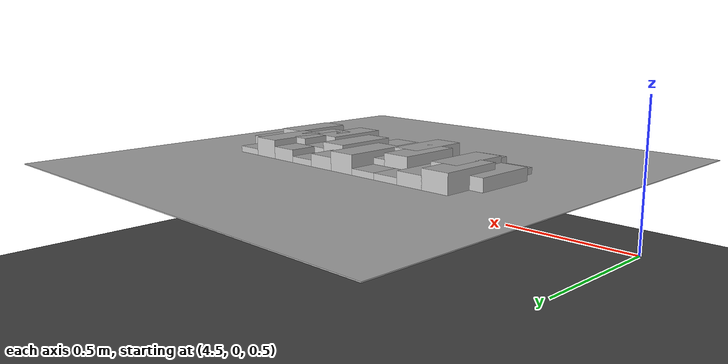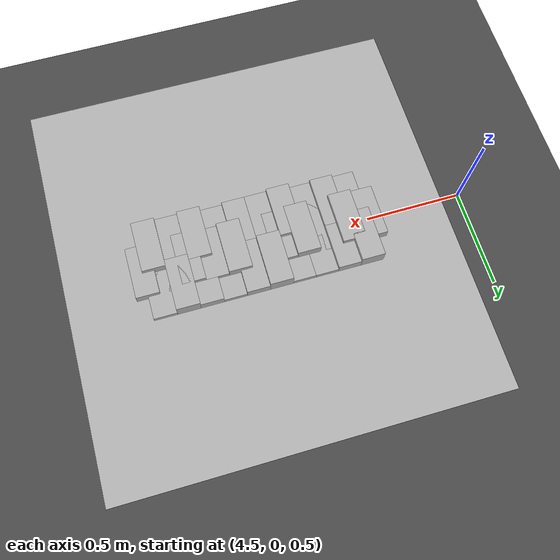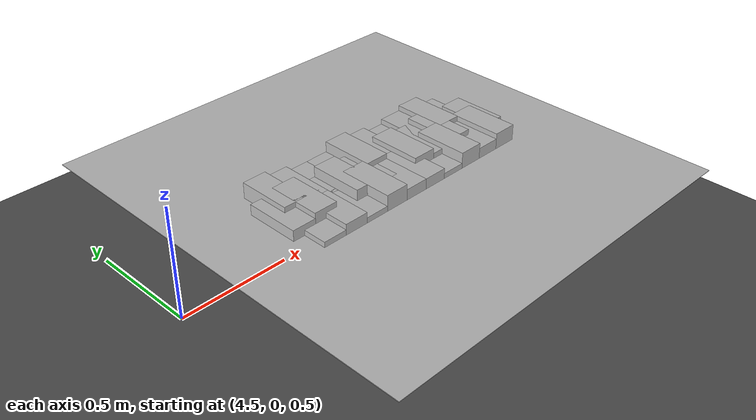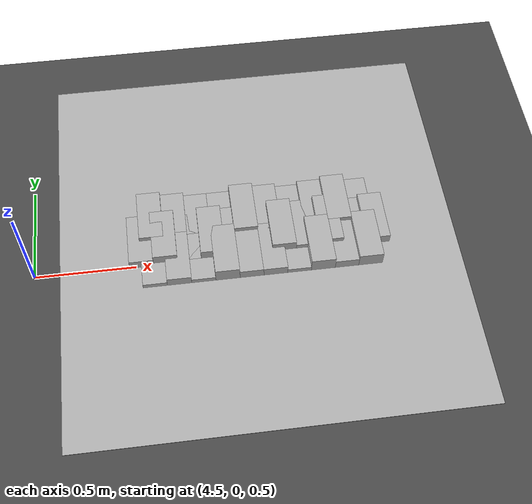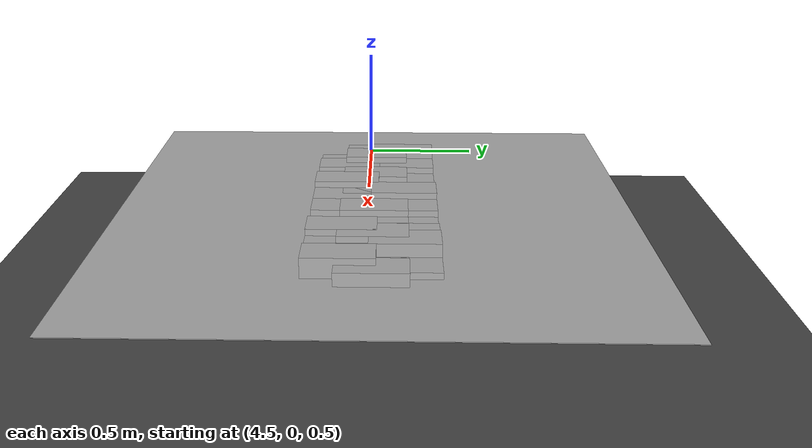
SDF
<sdf version="1.6">
 <world name="default">
  <model name="ground_plane">
   <static>1</static>
   <link name="link">
    <collision name="collision">
     <geometry><plane><normal>0 0 1</normal><size>100 100</size></plane></geometry>
     <surface><friction><ode><mu>100</mu><mu2>50</mu2></ode></friction></surface>
    </collision>
    <visual name="visual">
     <cast_shadows>0</cast_shadows>
     <geometry><plane><normal>0 0 1</normal><size>100 100</size></plane></geometry>
     <material>
      <script><uri>file://media/materials/scripts/gazebo.material</uri><name>Gazebo/Grey</name></script>
     </material>
    </visual>
   </link>
  </model>
  <model name="frc2016_roughterrain_0">
   <link name="link_clone_23">
    <pose>5.7094 0.010101 -0.073164 0 -0 0</pose>
    <inertial>
     <inertia><ixx>nan</ixx><ixy>0</ixy><ixz>0</ixz><iyy>nan</iyy><iyz>0</iyz><izz>nan</izz></inertia>
     <mass>0</mass>
    </inertial>
    <visual name="row1_block5_md">
     <pose>0.05715 0.1143 0.10968 0 -0 0</pose>
     <geometry><box><size>0.115452 0.257474 0.0508</size></box></geometry>
     <material><shader type="pixel"/></material>
    </visual>
    <visual name="row1_block4_sm">
     <pose>0.17145 0.1143 0.09698 0 -0 0</pose>
     <geometry><box><size>0.115452 0.257474 0.0254</size></box></geometry>
     <material><shader type="pixel"/></material>
    </visual>
    <visual name="row1_block3_md">
     <pose>0.28575 0.1143 0.10968 0 -0 0</pose>
     <geometry><box><size>0.115452 0.257474 0.0508</size></box></geometry>
     <material><shader type="pixel"/></material>
    </visual>
    <visual name="platform">
     <pose>0 0 0.08269 0 -0 0</pose>
     <geometry><box><size>1.91826 2.01688 0.003175</size></box></geometry>
     <material><shader type="pixel"/></material>
    </visual>
    <visual name="row1_block1_sm">
     <pose>0.51435 0.1143 0.09698 0 -0 0</pose>
     <geometry><box><size>0.115452 0.257474 0.0254</size></box></geometry>
     <material><shader type="pixel"/></material>
    </visual>
    <visual name="row1_block2_lg">
     <pose>0.40005 0.1143 0.12238 0 -0 0</pose>
     <geometry><box><size>0.115452 0.257474 0.0762</size></box></geometry>
     <material><shader type="pixel"/></material>
    </visual>
    <visual name="row1_block6_lg">
     <pose>-0.05715 0.1143 0.12238 0 -0 0</pose>
     <geometry><box><size>0.115452 0.257474 0.0762</size></box></geometry>
     <material><shader type="pixel"/></material>
    </visual>
    <visual name="row1_block8_sm">
     <pose>-0.28575 0.1143 0.09698 0 -0 0</pose>
     <geometry><box><size>0.115452 0.257474 0.0254</size></box></geometry>
     <material><shader type="pixel"/></material>
    </visual>
    <visual name="row1_block7_sm">
     <pose>-0.17145 0.1143 0.09698 0 -0 0</pose>
     <geometry><box><size>0.115452 0.257474 0.0254</size></box></geometry>
     <material><shader type="pixel"/></material>
    </visual>
    <visual name="row1_block9_md">
     <pose>-0.40005 0.1143 0.10968 0 -0 0</pose>
     <geometry><box><size>0.115452 0.257474 0.0508</size></box></geometry>
     <material><shader type="pixel"/></material>
    </visual>
    <visual name="row1_block10_lg">
     <pose>-0.51435 0.1143 0.12238 0 -0 0</pose>
     <geometry><box><size>0.115452 0.257474 0.0762</size></box></geometry>
     <material><shader type="pixel"/></material>
    </visual>
    <visual name="row2_block1_md">
     <pose>0.5715 0 0.10968 0 -0 0</pose>
     <geometry><box><size>0.115452 0.257474 0.0508</size></box></geometry>
     <material><shader type="pixel"/></material>
    </visual>
    <visual name="row2_block2_sm">
     <pose>0.4572 0 0.09698 0 -0 0</pose>
     <geometry><box><size>0.115452 0.257474 0.0254</size></box></geometry>
     <material><shader type="pixel"/></material>
    </visual>
    <visual name="row2_block3_lg">
     <pose>0.3429 0 0.12238 0 -0 0</pose>
     <geometry><box><size>0.115452 0.257474 0.0762</size></box></geometry>
     <material><shader type="pixel"/></material>
    </visual>
    <visual name="row2_block4_md">
     <pose>0.2286 0 0.10968 0 -0 0</pose>
     <geometry><box><size>0.115452 0.257474 0.0508</size></box></geometry>
     <material><shader type="pixel"/></material>
    </visual>
    <visual name="row2_block5_lg">
     <pose>0.1143 0 0.12238 0 -0 0</pose>
     <geometry><box><size>0.115452 0.257474 0.0762</size></box></geometry>
     <material><shader type="pixel"/></material>
    </visual>
    <visual name="row2_block6_sm">
     <pose>0 0 0.09698 0 -0 0</pose>
     <geometry><box><size>0.115452 0.257474 0.0254</size></box></geometry>
     <material><shader type="pixel"/></material>
    </visual>
    <visual name="row2_block7_md">
     <pose>-0.1143 0 0.10968 0 -0 0</pose>
     <geometry><box><size>0.115452 0.257474 0.0508</size></box></geometry>
     <material><shader type="pixel"/></material>
    </visual>
    <visual name="row2_block8_lg">
     <pose>-0.2286 0 0.12238 0 -0 0</pose>
     <geometry><box><size>0.115452 0.257474 0.0762</size></box></geometry>
     <material><shader type="pixel"/></material>
    </visual>
    <visual name="row2_block9_sm">
     <pose>-0.3429 0 0.09698 0 -0 0</pose>
     <geometry><box><size>0.115452 0.257474 0.0254</size></box></geometry>
     <material><shader type="pixel"/></material>
    </visual>
    <visual name="row2_block10_lg">
     <pose>-0.4572 0 0.12238 0 -0 0</pose>
     <geometry><box><size>0.115452 0.257474 0.0762</size></box></geometry>
     <material><shader type="pixel"/></material>
    </visual>
    <visual name="row2_block11_md">
     <pose>-0.5715 0 0.10968 0 -0 0</pose>
     <geometry><box><size>0.115452 0.257474 0.0508</size></box></geometry>
     <material><shader type="pixel"/></material>
    </visual>
    <visual name="row3_block2_md">
     <pose>0.40005 -0.1143 0.10968 0 -0 0</pose>
     <geometry><box><size>0.115452 0.257474 0.0508</size></box></geometry>
     <material><shader type="pixel"/></material>
    </visual>
    <visual name="row3_block1_lg">
     <pose>0.51435 -0.1143 0.12238 0 -0 0</pose>
     <geometry><box><size>0.115452 0.257474 0.0762</size></box></geometry>
     <material><shader type="pixel"/></material>
    </visual>
    <visual name="row3_block3_lg">
     <pose>0.28575 -0.1143 0.12238 0 -0 0</pose>
     <geometry><box><size>0.115452 0.257474 0.0762</size></box></geometry>
     <material><shader type="pixel"/></material>
    </visual>
    <visual name="row3_block4_sm">
     <pose>0.17145 -0.1143 0.09698 0 -0 0</pose>
     <geometry><box><size>0.115452 0.257474 0.0254</size></box></geometry>
     <material><shader type="pixel"/></material>
    </visual>
    <visual name="row3_block5_md">
     <pose>0.05715 -0.1143 0.10968 0 -0 0</pose>
     <geometry><box><size>0.115452 0.257474 0.0508</size></box></geometry>
     <material><shader type="pixel"/></material>
    </visual>
    <visual name="row3_block6_md">
     <pose>-0.05715 -0.1143 0.10968 0 -0 0</pose>
     <geometry><box><size>0.115452 0.257474 0.0508</size></box></geometry>
     <material><shader type="pixel"/></material>
    </visual>
    <visual name="row3_block8_sm">
     <pose>-0.28575 -0.1143 0.09698 0 -0 0</pose>
     <geometry><box><size>0.115452 0.257474 0.0254</size></box></geometry>
     <material><shader type="pixel"/></material>
    </visual>
    <visual name="row3_block7_lg">
     <pose>-0.17145 -0.1143 0.12238 0 -0 0</pose>
     <geometry><box><size>0.115452 0.257474 0.0762</size></box></geometry>
     <material><shader type="pixel"/></material>
    </visual>
    <visual name="row3_block9_md">
     <pose>-0.40005 -0.1143 0.10968 0 -0 0</pose>
     <geometry><box><size>0.115452 0.257474 0.0508</size></box></geometry>
     <material><shader type="pixel"/></material>
    </visual>
    <visual name="row3_block10_sm">
     <pose>-0.51435 -0.1143 0.09698 0 -0 0</pose>
     <geometry><box><size>0.115452 0.257474 0.0254</size></box></geometry>
     <material><shader type="pixel"/></material>
    </visual>
    <collision name="row2_block5_lg_0">
     <pose>0.1143 0 0.12238 0 -0 0</pose>
     <geometry><box><size>0.115452 0.257474 0.0762</size></box></geometry>
     <surface>
      <friction>
       <ode><mu>1</mu><mu2>1</mu2><fdir1>0 0 0</fdir1><slip1>0</slip1><slip2>0</slip2></ode>
       <torsional>
        <coefficient>1</coefficient>
        <patch_radius>0</patch_radius>
        <surface_radius>0</surface_radius>
        <use_patch_radius>1</use_patch_radius>
        <ode><slip>0</slip></ode>
       </torsional>
      </friction>
      <bounce><restitution_coefficient>0</restitution_coefficient><threshold>1e+06</threshold></bounce>
      <contact>
       <collide_without_contact>0</collide_without_contact>
       <collide_without_contact_bitmask>1</collide_without_contact_bitmask>
       <collide_bitmask>1</collide_bitmask>
       <ode>
        <soft_cfm>0</soft_cfm>
        <soft_erp>0.2</soft_erp>
        <kp>1e+13</kp>
        <kd>1</kd>
        <max_vel>0.01</max_vel>
        <min_depth>0</min_depth>
       </ode>
       <bullet>
        <split_impulse>1</split_impulse>
        <split_impulse_penetration_threshold>-0.01</split_impulse_penetration_threshold>
        <soft_cfm>0</soft_cfm>
        <soft_erp>0.2</soft_erp>
        <kp>1e+13</kp>
        <kd>1</kd>
       </bullet>
      </contact>
     </surface>
    </collision>
    <collision name="platform_0">
     <pose>0 0 0.08269 0 -0 0</pose>
     <geometry><box><size>1.91826 2.01688 0.003175</size></box></geometry>
     <surface>
      <friction>
       <ode><mu>1</mu><mu2>1</mu2><fdir1>0 0 0</fdir1><slip1>0</slip1><slip2>0</slip2></ode>
       <torsional>
        <coefficient>1</coefficient>
        <patch_radius>0</patch_radius>
        <surface_radius>0</surface_radius>
        <use_patch_radius>1</use_patch_radius>
        <ode><slip>0</slip></ode>
       </torsional>
      </friction>
      <bounce><restitution_coefficient>0</restitution_coefficient><threshold>1e+06</threshold></bounce>
      <contact>
       <collide_without_contact>0</collide_without_contact>
       <collide_without_contact_bitmask>1</collide_without_contact_bitmask>
       <collide_bitmask>1</collide_bitmask>
       <ode>
        <soft_cfm>0</soft_cfm>
        <soft_erp>0.2</soft_erp>
        <kp>1e+13</kp>
        <kd>1</kd>
        <max_vel>0.01</max_vel>
        <min_depth>0</min_depth>
       </ode>
       <bullet>
        <split_impulse>1</split_impulse>
        <split_impulse_penetration_threshold>-0.01</split_impulse_penetration_threshold>
        <soft_cfm>0</soft_cfm>
        <soft_erp>0.2</soft_erp>
        <kp>1e+13</kp>
        <kd>1</kd>
       </bullet>
      </contact>
     </surface>
    </collision>
    <collision name="row1_block1_sm_0">
     <pose>0.51435 0.1143 0.09698 0 -0 0</pose>
     <geometry><box><size>0.115452 0.257474 0.0254</size></box></geometry>
     <surface>
      <friction>
       <ode><mu>1</mu><mu2>1</mu2><fdir1>0 0 0</fdir1><slip1>0</slip1><slip2>0</slip2></ode>
       <torsional>
        <coefficient>1</coefficient>
        <patch_radius>0</patch_radius>
        <surface_radius>0</surface_radius>
        <use_patch_radius>1</use_patch_radius>
        <ode><slip>0</slip></ode>
       </torsional>
      </friction>
      <bounce><restitution_coefficient>0</restitution_coefficient><threshold>1e+06</threshold></bounce>
      <contact>
       <collide_without_contact>0</collide_without_contact>
       <collide_without_contact_bitmask>1</collide_without_contact_bitmask>
       <collide_bitmask>1</collide_bitmask>
       <ode>
        <soft_cfm>0</soft_cfm>
        <soft_erp>0.2</soft_erp>
        <kp>1e+13</kp>
        <kd>1</kd>
        <max_vel>0.01</max_vel>
        <min_depth>0</min_depth>
       </ode>
       <bullet>
        <split_impulse>1</split_impulse>
        <split_impulse_penetration_threshold>-0.01</split_impulse_penetration_threshold>
        <soft_cfm>0</soft_cfm>
        <soft_erp>0.2</soft_erp>
        <kp>1e+13</kp>
        <kd>1</kd>
       </bullet>
      </contact>
     </surface>
    </collision>
    <collision name="row1_block2_lg_0">
     <pose>0.40005 0.1143 0.12238 0 -0 0</pose>
     <geometry><box><size>0.115452 0.257474 0.0762</size></box></geometry>
     <surface>
      <friction>
       <ode><mu>1</mu><mu2>1</mu2><fdir1>0 0 0</fdir1><slip1>0</slip1><slip2>0</slip2></ode>
       <torsional>
        <coefficient>1</coefficient>
        <patch_radius>0</patch_radius>
        <surface_radius>0</surface_radius>
        <use_patch_radius>1</use_patch_radius>
        <ode><slip>0</slip></ode>
       </torsional>
      </friction>
      <bounce><restitution_coefficient>0</restitution_coefficient><threshold>1e+06</threshold></bounce>
      <contact>
       <collide_without_contact>0</collide_without_contact>
       <collide_without_contact_bitmask>1</collide_without_contact_bitmask>
       <collide_bitmask>1</collide_bitmask>
       <ode>
        <soft_cfm>0</soft_cfm>
        <soft_erp>0.2</soft_erp>
        <kp>1e+13</kp>
        <kd>1</kd>
        <max_vel>0.01</max_vel>
        <min_depth>0</min_depth>
       </ode>
       <bullet>
        <split_impulse>1</split_impulse>
        <split_impulse_penetration_threshold>-0.01</split_impulse_penetration_threshold>
        <soft_cfm>0</soft_cfm>
        <soft_erp>0.2</soft_erp>
        <kp>1e+13</kp>
        <kd>1</kd>
       </bullet>
      </contact>
     </surface>
    </collision>
    <collision name="row1_block3_md_0">
     <pose>0.28575 0.1143 0.10968 0 -0 0</pose>
     <geometry><box><size>0.115452 0.257474 0.0508</size></box></geometry>
     <surface>
      <friction>
       <ode><mu>1</mu><mu2>1</mu2><fdir1>0 0 0</fdir1><slip1>0</slip1><slip2>0</slip2></ode>
       <torsional>
        <coefficient>1</coefficient>
        <patch_radius>0</patch_radius>
        <surface_radius>0</surface_radius>
        <use_patch_radius>1</use_patch_radius>
        <ode><slip>0</slip></ode>
       </torsional>
      </friction>
      <bounce><restitution_coefficient>0</restitution_coefficient><threshold>1e+06</threshold></bounce>
      <contact>
       <collide_without_contact>0</collide_without_contact>
       <collide_without_contact_bitmask>1</collide_without_contact_bitmask>
       <collide_bitmask>1</collide_bitmask>
       <ode>
        <soft_cfm>0</soft_cfm>
        <soft_erp>0.2</soft_erp>
        <kp>1e+13</kp>
        <kd>1</kd>
        <max_vel>0.01</max_vel>
        <min_depth>0</min_depth>
       </ode>
       <bullet>
        <split_impulse>1</split_impulse>
        <split_impulse_penetration_threshold>-0.01</split_impulse_penetration_threshold>
        <soft_cfm>0</soft_cfm>
        <soft_erp>0.2</soft_erp>
        <kp>1e+13</kp>
        <kd>1</kd>
       </bullet>
      </contact>
     </surface>
    </collision>
    <collision name="row1_block5_md_0">
     <pose>0.05715 0.1143 0.10968 0 -0 0</pose>
     <geometry><box><size>0.115452 0.257474 0.0508</size></box></geometry>
     <surface>
      <friction>
       <ode><mu>1</mu><mu2>1</mu2><fdir1>0 0 0</fdir1><slip1>0</slip1><slip2>0</slip2></ode>
       <torsional>
        <coefficient>1</coefficient>
        <patch_radius>0</patch_radius>
        <surface_radius>0</surface_radius>
        <use_patch_radius>1</use_patch_radius>
        <ode><slip>0</slip></ode>
       </torsional>
      </friction>
      <bounce><restitution_coefficient>0</restitution_coefficient><threshold>1e+06</threshold></bounce>
      <contact>
       <collide_without_contact>0</collide_without_contact>
       <collide_without_contact_bitmask>1</collide_without_contact_bitmask>
       <collide_bitmask>1</collide_bitmask>
       <ode>
        <soft_cfm>0</soft_cfm>
        <soft_erp>0.2</soft_erp>
        <kp>1e+13</kp>
        <kd>1</kd>
        <max_vel>0.01</max_vel>
        <min_depth>0</min_depth>
       </ode>
       <bullet>
        <split_impulse>1</split_impulse>
        <split_impulse_penetration_threshold>-0.01</split_impulse_penetration_threshold>
        <soft_cfm>0</soft_cfm>
        <soft_erp>0.2</soft_erp>
        <kp>1e+13</kp>
        <kd>1</kd>
       </bullet>
      </contact>
     </surface>
    </collision>
    <collision name="row1_block4_sm_0">
     <pose>0.17145 0.1143 0.09698 0 -0 0</pose>
     <geometry><box><size>0.115452 0.257474 0.0254</size></box></geometry>
     <surface>
      <friction>
       <ode><mu>1</mu><mu2>1</mu2><fdir1>0 0 0</fdir1><slip1>0</slip1><slip2>0</slip2></ode>
       <torsional>
        <coefficient>1</coefficient>
        <patch_radius>0</patch_radius>
        <surface_radius>0</surface_radius>
        <use_patch_radius>1</use_patch_radius>
        <ode><slip>0</slip></ode>
       </torsional>
      </friction>
      <bounce><restitution_coefficient>0</restitution_coefficient><threshold>1e+06</threshold></bounce>
      <contact>
       <collide_without_contact>0</collide_without_contact>
       <collide_without_contact_bitmask>1</collide_without_contact_bitmask>
       <collide_bitmask>1</collide_bitmask>
       <ode>
        <soft_cfm>0</soft_cfm>
        <soft_erp>0.2</soft_erp>
        <kp>1e+13</kp>
        <kd>1</kd>
        <max_vel>0.01</max_vel>
        <min_depth>0</min_depth>
       </ode>
       <bullet>
        <split_impulse>1</split_impulse>
        <split_impulse_penetration_threshold>-0.01</split_impulse_penetration_threshold>
        <soft_cfm>0</soft_cfm>
        <soft_erp>0.2</soft_erp>
        <kp>1e+13</kp>
        <kd>1</kd>
       </bullet>
      </contact>
     </surface>
    </collision>
    <collision name="row1_block7_sm_0">
     <pose>-0.17145 0.1143 0.09698 0 -0 0</pose>
     <geometry><box><size>0.115452 0.257474 0.0254</size></box></geometry>
     <surface>
      <friction>
       <ode><mu>1</mu><mu2>1</mu2><fdir1>0 0 0</fdir1><slip1>0</slip1><slip2>0</slip2></ode>
       <torsional>
        <coefficient>1</coefficient>
        <patch_radius>0</patch_radius>
        <surface_radius>0</surface_radius>
        <use_patch_radius>1</use_patch_radius>
        <ode><slip>0</slip></ode>
       </torsional>
      </friction>
      <bounce><restitution_coefficient>0</restitution_coefficient><threshold>1e+06</threshold></bounce>
      <contact>
       <collide_without_contact>0</collide_without_contact>
       <collide_without_contact_bitmask>1</collide_without_contact_bitmask>
       <collide_bitmask>1</collide_bitmask>
       <ode>
        <soft_cfm>0</soft_cfm>
        <soft_erp>0.2</soft_erp>
        <kp>1e+13</kp>
        <kd>1</kd>
        <max_vel>0.01</max_vel>
        <min_depth>0</min_depth>
       </ode>
       <bullet>
        <split_impulse>1</split_impulse>
        <split_impulse_penetration_threshold>-0.01</split_impulse_penetration_threshold>
        <soft_cfm>0</soft_cfm>
        <soft_erp>0.2</soft_erp>
        <kp>1e+13</kp>
        <kd>1</kd>
       </bullet>
      </contact>
     </surface>
    </collision>
    <collision name="row1_block6_lg_0">
     <pose>-0.05715 0.1143 0.12238 0 -0 0</pose>
     <geometry><box><size>0.115452 0.257474 0.0762</size></box></geometry>
     <surface>
      <friction>
       <ode><mu>1</mu><mu2>1</mu2><fdir1>0 0 0</fdir1><slip1>0</slip1><slip2>0</slip2></ode>
       <torsional>
        <coefficient>1</coefficient>
        <patch_radius>0</patch_radius>
        <surface_radius>0</surface_radius>
        <use_patch_radius>1</use_patch_radius>
        <ode><slip>0</slip></ode>
       </torsional>
      </friction>
      <bounce><restitution_coefficient>0</restitution_coefficient><threshold>1e+06</threshold></bounce>
      <contact>
       <collide_without_contact>0</collide_without_contact>
       <collide_without_contact_bitmask>1</collide_without_contact_bitmask>
       <collide_bitmask>1</collide_bitmask>
       <ode>
        <soft_cfm>0</soft_cfm>
        <soft_erp>0.2</soft_erp>
        <kp>1e+13</kp>
        <kd>1</kd>
        <max_vel>0.01</max_vel>
        <min_depth>0</min_depth>
       </ode>
       <bullet>
        <split_impulse>1</split_impulse>
        <split_impulse_penetration_threshold>-0.01</split_impulse_penetration_threshold>
        <soft_cfm>0</soft_cfm>
        <soft_erp>0.2</soft_erp>
        <kp>1e+13</kp>
        <kd>1</kd>
       </bullet>
      </contact>
     </surface>
    </collision>
    <collision name="row1_block8_sm_0">
     <pose>-0.28575 0.1143 0.09698 0 -0 0</pose>
     <geometry><box><size>0.115452 0.257474 0.0254</size></box></geometry>
     <surface>
      <friction>
       <ode><mu>1</mu><mu2>1</mu2><fdir1>0 0 0</fdir1><slip1>0</slip1><slip2>0</slip2></ode>
       <torsional>
        <coefficient>1</coefficient>
        <patch_radius>0</patch_radius>
        <surface_radius>0</surface_radius>
        <use_patch_radius>1</use_patch_radius>
        <ode><slip>0</slip></ode>
       </torsional>
      </friction>
      <bounce><restitution_coefficient>0</restitution_coefficient><threshold>1e+06</threshold></bounce>
      <contact>
       <collide_without_contact>0</collide_without_contact>
       <collide_without_contact_bitmask>1</collide_without_contact_bitmask>
       <collide_bitmask>1</collide_bitmask>
       <ode>
        <soft_cfm>0</soft_cfm>
        <soft_erp>0.2</soft_erp>
        <kp>1e+13</kp>
        <kd>1</kd>
        <max_vel>0.01</max_vel>
        <min_depth>0</min_depth>
       </ode>
       <bullet>
        <split_impulse>1</split_impulse>
        <split_impulse_penetration_threshold>-0.01</split_impulse_penetration_threshold>
        <soft_cfm>0</soft_cfm>
        <soft_erp>0.2</soft_erp>
        <kp>1e+13</kp>
        <kd>1</kd>
       </bullet>
      </contact>
     </surface>
    </collision>
    <collision name="row1_block10_lg_0">
     <pose>-0.51435 0.1143 0.12238 0 -0 0</pose>
     <geometry><box><size>0.115452 0.257474 0.0762</size></box></geometry>
     <surface>
      <friction>
       <ode><mu>1</mu><mu2>1</mu2><fdir1>0 0 0</fdir1><slip1>0</slip1><slip2>0</slip2></ode>
       <torsional>
        <coefficient>1</coefficient>
        <patch_radius>0</patch_radius>
        <surface_radius>0</surface_radius>
        <use_patch_radius>1</use_patch_radius>
        <ode><slip>0</slip></ode>
       </torsional>
      </friction>
      <bounce><restitution_coefficient>0</restitution_coefficient><threshold>1e+06</threshold></bounce>
      <contact>
       <collide_without_contact>0</collide_without_contact>
       <collide_without_contact_bitmask>1</collide_without_contact_bitmask>
       <collide_bitmask>1</collide_bitmask>
       <ode>
        <soft_cfm>0</soft_cfm>
        <soft_erp>0.2</soft_erp>
        <kp>1e+13</kp>
        <kd>1</kd>
        <max_vel>0.01</max_vel>
        <min_depth>0</min_depth>
       </ode>
       <bullet>
        <split_impulse>1</split_impulse>
        <split_impulse_penetration_threshold>-0.01</split_impulse_penetration_threshold>
        <soft_cfm>0</soft_cfm>
        <soft_erp>0.2</soft_erp>
        <kp>1e+13</kp>
        <kd>1</kd>
       </bullet>
      </contact>
     </surface>
    </collision>
    <collision name="row2_block1_md_0">
     <pose>0.5715 0 0.10968 0 -0 0</pose>
     <geometry><box><size>0.115452 0.257474 0.0508</size></box></geometry>
     <surface>
      <friction>
       <ode><mu>1</mu><mu2>1</mu2><fdir1>0 0 0</fdir1><slip1>0</slip1><slip2>0</slip2></ode>
       <torsional>
        <coefficient>1</coefficient>
        <patch_radius>0</patch_radius>
        <surface_radius>0</surface_radius>
        <use_patch_radius>1</use_patch_radius>
        <ode><slip>0</slip></ode>
       </torsional>
      </friction>
      <bounce><restitution_coefficient>0</restitution_coefficient><threshold>1e+06</threshold></bounce>
      <contact>
       <collide_without_contact>0</collide_without_contact>
       <collide_without_contact_bitmask>1</collide_without_contact_bitmask>
       <collide_bitmask>1</collide_bitmask>
       <ode>
        <soft_cfm>0</soft_cfm>
        <soft_erp>0.2</soft_erp>
        <kp>1e+13</kp>
        <kd>1</kd>
        <max_vel>0.01</max_vel>
        <min_depth>0</min_depth>
       </ode>
       <bullet>
        <split_impulse>1</split_impulse>
        <split_impulse_penetration_threshold>-0.01</split_impulse_penetration_threshold>
        <soft_cfm>0</soft_cfm>
        <soft_erp>0.2</soft_erp>
        <kp>1e+13</kp>
        <kd>1</kd>
       </bullet>
      </contact>
     </surface>
    </collision>
    <collision name="row1_block9_md_0">
     <pose>-0.40005 0.1143 0.10968 0 -0 0</pose>
     <geometry><box><size>0.115452 0.257474 0.0508</size></box></geometry>
     <surface>
      <friction>
       <ode><mu>1</mu><mu2>1</mu2><fdir1>0 0 0</fdir1><slip1>0</slip1><slip2>0</slip2></ode>
       <torsional>
        <coefficient>1</coefficient>
        <patch_radius>0</patch_radius>
        <surface_radius>0</surface_radius>
        <use_patch_radius>1</use_patch_radius>
        <ode><slip>0</slip></ode>
       </torsional>
      </friction>
      <bounce><restitution_coefficient>0</restitution_coefficient><threshold>1e+06</threshold></bounce>
      <contact>
       <collide_without_contact>0</collide_without_contact>
       <collide_without_contact_bitmask>1</collide_without_contact_bitmask>
       <collide_bitmask>1</collide_bitmask>
       <ode>
        <soft_cfm>0</soft_cfm>
        <soft_erp>0.2</soft_erp>
        <kp>1e+13</kp>
        <kd>1</kd>
        <max_vel>0.01</max_vel>
        <min_depth>0</min_depth>
       </ode>
       <bullet>
        <split_impulse>1</split_impulse>
        <split_impulse_penetration_threshold>-0.01</split_impulse_penetration_threshold>
        <soft_cfm>0</soft_cfm>
        <soft_erp>0.2</soft_erp>
        <kp>1e+13</kp>
        <kd>1</kd>
       </bullet>
      </contact>
     </surface>
    </collision>
    <collision name="row2_block2_sm_0">
     <pose>0.4572 0 0.09698 0 -0 0</pose>
     <geometry><box><size>0.115452 0.257474 0.0254</size></box></geometry>
     <surface>
      <friction>
       <ode><mu>1</mu><mu2>1</mu2><fdir1>0 0 0</fdir1><slip1>0</slip1><slip2>0</slip2></ode>
       <torsional>
        <coefficient>1</coefficient>
        <patch_radius>0</patch_radius>
        <surface_radius>0</surface_radius>
        <use_patch_radius>1</use_patch_radius>
        <ode><slip>0</slip></ode>
       </torsional>
      </friction>
      <bounce><restitution_coefficient>0</restitution_coefficient><threshold>1e+06</threshold></bounce>
      <contact>
       <collide_without_contact>0</collide_without_contact>
       <collide_without_contact_bitmask>1</collide_without_contact_bitmask>
       <collide_bitmask>1</collide_bitmask>
       <ode>
        <soft_cfm>0</soft_cfm>
        <soft_erp>0.2</soft_erp>
        <kp>1e+13</kp>
        <kd>1</kd>
        <max_vel>0.01</max_vel>
        <min_depth>0</min_depth>
       </ode>
       <bullet>
        <split_impulse>1</split_impulse>
        <split_impulse_penetration_threshold>-0.01</split_impulse_penetration_threshold>
        <soft_cfm>0</soft_cfm>
        <soft_erp>0.2</soft_erp>
        <kp>1e+13</kp>
        <kd>1</kd>
       </bullet>
      </contact>
     </surface>
    </collision>
    <collision name="row2_block6_sm_0">
     <pose>0 0 0.09698 0 -0 0</pose>
     <geometry><box><size>0.115452 0.257474 0.0254</size></box></geometry>
     <surface>
      <friction>
       <ode><mu>1</mu><mu2>1</mu2><fdir1>0 0 0</fdir1><slip1>0</slip1><slip2>0</slip2></ode>
       <torsional>
        <coefficient>1</coefficient>
        <patch_radius>0</patch_radius>
        <surface_radius>0</surface_radius>
        <use_patch_radius>1</use_patch_radius>
        <ode><slip>0</slip></ode>
       </torsional>
      </friction>
      <bounce><restitution_coefficient>0</restitution_coefficient><threshold>1e+06</threshold></bounce>
      <contact>
       <collide_without_contact>0</collide_without_contact>
       <collide_without_contact_bitmask>1</collide_without_contact_bitmask>
       <collide_bitmask>1</collide_bitmask>
       <ode>
        <soft_cfm>0</soft_cfm>
        <soft_erp>0.2</soft_erp>
        <kp>1e+13</kp>
        <kd>1</kd>
        <max_vel>0.01</max_vel>
        <min_depth>0</min_depth>
       </ode>
       <bullet>
        <split_impulse>1</split_impulse>
        <split_impulse_penetration_threshold>-0.01</split_impulse_penetration_threshold>
        <soft_cfm>0</soft_cfm>
        <soft_erp>0.2</soft_erp>
        <kp>1e+13</kp>
        <kd>1</kd>
       </bullet>
      </contact>
     </surface>
    </collision>
    <collision name="row2_block4_md_0">
     <pose>0.2286 0 0.10968 0 -0 0</pose>
     <geometry><box><size>0.115452 0.257474 0.0508</size></box></geometry>
     <surface>
      <friction>
       <ode><mu>1</mu><mu2>1</mu2><fdir1>0 0 0</fdir1><slip1>0</slip1><slip2>0</slip2></ode>
       <torsional>
        <coefficient>1</coefficient>
        <patch_radius>0</patch_radius>
        <surface_radius>0</surface_radius>
        <use_patch_radius>1</use_patch_radius>
        <ode><slip>0</slip></ode>
       </torsional>
      </friction>
      <bounce><restitution_coefficient>0</restitution_coefficient><threshold>1e+06</threshold></bounce>
      <contact>
       <collide_without_contact>0</collide_without_contact>
       <collide_without_contact_bitmask>1</collide_without_contact_bitmask>
       <collide_bitmask>1</collide_bitmask>
       <ode>
        <soft_cfm>0</soft_cfm>
        <soft_erp>0.2</soft_erp>
        <kp>1e+13</kp>
        <kd>1</kd>
        <max_vel>0.01</max_vel>
        <min_depth>0</min_depth>
       </ode>
       <bullet>
        <split_impulse>1</split_impulse>
        <split_impulse_penetration_threshold>-0.01</split_impulse_penetration_threshold>
        <soft_cfm>0</soft_cfm>
        <soft_erp>0.2</soft_erp>
        <kp>1e+13</kp>
        <kd>1</kd>
       </bullet>
      </contact>
     </surface>
    </collision>
    <collision name="row2_block7_md_0">
     <pose>-0.1143 0 0.10968 0 -0 0</pose>
     <geometry><box><size>0.115452 0.257474 0.0508</size></box></geometry>
     <surface>
      <friction>
       <ode><mu>1</mu><mu2>1</mu2><fdir1>0 0 0</fdir1><slip1>0</slip1><slip2>0</slip2></ode>
       <torsional>
        <coefficient>1</coefficient>
        <patch_radius>0</patch_radius>
        <surface_radius>0</surface_radius>
        <use_patch_radius>1</use_patch_radius>
        <ode><slip>0</slip></ode>
       </torsional>
      </friction>
      <bounce><restitution_coefficient>0</restitution_coefficient><threshold>1e+06</threshold></bounce>
      <contact>
       <collide_without_contact>0</collide_without_contact>
       <collide_without_contact_bitmask>1</collide_without_contact_bitmask>
       <collide_bitmask>1</collide_bitmask>
       <ode>
        <soft_cfm>0</soft_cfm>
        <soft_erp>0.2</soft_erp>
        <kp>1e+13</kp>
        <kd>1</kd>
        <max_vel>0.01</max_vel>
        <min_depth>0</min_depth>
       </ode>
       <bullet>
        <split_impulse>1</split_impulse>
        <split_impulse_penetration_threshold>-0.01</split_impulse_penetration_threshold>
        <soft_cfm>0</soft_cfm>
        <soft_erp>0.2</soft_erp>
        <kp>1e+13</kp>
        <kd>1</kd>
       </bullet>
      </contact>
     </surface>
    </collision>
    <collision name="row2_block3_lg_0">
     <pose>0.3429 0 0.12238 0 -0 0</pose>
     <geometry><box><size>0.115452 0.257474 0.0762</size></box></geometry>
     <surface>
      <friction>
       <ode><mu>1</mu><mu2>1</mu2><fdir1>0 0 0</fdir1><slip1>0</slip1><slip2>0</slip2></ode>
       <torsional>
        <coefficient>1</coefficient>
        <patch_radius>0</patch_radius>
        <surface_radius>0</surface_radius>
        <use_patch_radius>1</use_patch_radius>
        <ode><slip>0</slip></ode>
       </torsional>
      </friction>
      <bounce><restitution_coefficient>0</restitution_coefficient><threshold>1e+06</threshold></bounce>
      <contact>
       <collide_without_contact>0</collide_without_contact>
       <collide_without_contact_bitmask>1</collide_without_contact_bitmask>
       <collide_bitmask>1</collide_bitmask>
       <ode>
        <soft_cfm>0</soft_cfm>
        <soft_erp>0.2</soft_erp>
        <kp>1e+13</kp>
        <kd>1</kd>
        <max_vel>0.01</max_vel>
        <min_depth>0</min_depth>
       </ode>
       <bullet>
        <split_impulse>1</split_impulse>
        <split_impulse_penetration_threshold>-0.01</split_impulse_penetration_threshold>
        <soft_cfm>0</soft_cfm>
        <soft_erp>0.2</soft_erp>
        <kp>1e+13</kp>
        <kd>1</kd>
       </bullet>
      </contact>
     </surface>
    </collision>
    <collision name="row2_block10_lg_0">
     <pose>-0.4572 0 0.12238 0 -0 0</pose>
     <geometry><box><size>0.115452 0.257474 0.0762</size></box></geometry>
     <surface>
      <friction>
       <ode><mu>1</mu><mu2>1</mu2><fdir1>0 0 0</fdir1><slip1>0</slip1><slip2>0</slip2></ode>
       <torsional>
        <coefficient>1</coefficient>
        <patch_radius>0</patch_radius>
        <surface_radius>0</surface_radius>
        <use_patch_radius>1</use_patch_radius>
        <ode><slip>0</slip></ode>
       </torsional>
      </friction>
      <bounce><restitution_coefficient>0</restitution_coefficient><threshold>1e+06</threshold></bounce>
      <contact>
       <collide_without_contact>0</collide_without_contact>
       <collide_without_contact_bitmask>1</collide_without_contact_bitmask>
       <collide_bitmask>1</collide_bitmask>
       <ode>
        <soft_cfm>0</soft_cfm>
        <soft_erp>0.2</soft_erp>
        <kp>1e+13</kp>
        <kd>1</kd>
        <max_vel>0.01</max_vel>
        <min_depth>0</min_depth>
       </ode>
       <bullet>
        <split_impulse>1</split_impulse>
        <split_impulse_penetration_threshold>-0.01</split_impulse_penetration_threshold>
        <soft_cfm>0</soft_cfm>
        <soft_erp>0.2</soft_erp>
        <kp>1e+13</kp>
        <kd>1</kd>
       </bullet>
      </contact>
     </surface>
    </collision>
    <collision name="row2_block8_lg_0">
     <pose>-0.2286 0 0.12238 0 -0 0</pose>
     <geometry><box><size>0.115452 0.257474 0.0762</size></box></geometry>
     <surface>
      <friction>
       <ode><mu>1</mu><mu2>1</mu2><fdir1>0 0 0</fdir1><slip1>0</slip1><slip2>0</slip2></ode>
       <torsional>
        <coefficient>1</coefficient>
        <patch_radius>0</patch_radius>
        <surface_radius>0</surface_radius>
        <use_patch_radius>1</use_patch_radius>
        <ode><slip>0</slip></ode>
       </torsional>
      </friction>
      <bounce><restitution_coefficient>0</restitution_coefficient><threshold>1e+06</threshold></bounce>
      <contact>
       <collide_without_contact>0</collide_without_contact>
       <collide_without_contact_bitmask>1</collide_without_contact_bitmask>
       <collide_bitmask>1</collide_bitmask>
       <ode>
        <soft_cfm>0</soft_cfm>
        <soft_erp>0.2</soft_erp>
        <kp>1e+13</kp>
        <kd>1</kd>
        <max_vel>0.01</max_vel>
        <min_depth>0</min_depth>
       </ode>
       <bullet>
        <split_impulse>1</split_impulse>
        <split_impulse_penetration_threshold>-0.01</split_impulse_penetration_threshold>
        <soft_cfm>0</soft_cfm>
        <soft_erp>0.2</soft_erp>
        <kp>1e+13</kp>
        <kd>1</kd>
       </bullet>
      </contact>
     </surface>
    </collision>
    <collision name="row2_block9_sm_0">
     <pose>-0.3429 0 0.09698 0 -0 0</pose>
     <geometry><box><size>0.115452 0.257474 0.0254</size></box></geometry>
     <surface>
      <friction>
       <ode><mu>1</mu><mu2>1</mu2><fdir1>0 0 0</fdir1><slip1>0</slip1><slip2>0</slip2></ode>
       <torsional>
        <coefficient>1</coefficient>
        <patch_radius>0</patch_radius>
        <surface_radius>0</surface_radius>
        <use_patch_radius>1</use_patch_radius>
        <ode><slip>0</slip></ode>
       </torsional>
      </friction>
      <bounce><restitution_coefficient>0</restitution_coefficient><threshold>1e+06</threshold></bounce>
      <contact>
       <collide_without_contact>0</collide_without_contact>
       <collide_without_contact_bitmask>1</collide_without_contact_bitmask>
       <collide_bitmask>1</collide_bitmask>
       <ode>
        <soft_cfm>0</soft_cfm>
        <soft_erp>0.2</soft_erp>
        <kp>1e+13</kp>
        <kd>1</kd>
        <max_vel>0.01</max_vel>
        <min_depth>0</min_depth>
       </ode>
       <bullet>
        <split_impulse>1</split_impulse>
        <split_impulse_penetration_threshold>-0.01</split_impulse_penetration_threshold>
        <soft_cfm>0</soft_cfm>
        <soft_erp>0.2</soft_erp>
        <kp>1e+13</kp>
        <kd>1</kd>
       </bullet>
      </contact>
     </surface>
    </collision>
    <collision name="row2_block11_md_0">
     <pose>-0.5715 0 0.10968 0 -0 0</pose>
     <geometry><box><size>0.115452 0.257474 0.0508</size></box></geometry>
     <surface>
      <friction>
       <ode><mu>1</mu><mu2>1</mu2><fdir1>0 0 0</fdir1><slip1>0</slip1><slip2>0</slip2></ode>
       <torsional>
        <coefficient>1</coefficient>
        <patch_radius>0</patch_radius>
        <surface_radius>0</surface_radius>
        <use_patch_radius>1</use_patch_radius>
        <ode><slip>0</slip></ode>
       </torsional>
      </friction>
      <bounce><restitution_coefficient>0</restitution_coefficient><threshold>1e+06</threshold></bounce>
      <contact>
       <collide_without_contact>0</collide_without_contact>
       <collide_without_contact_bitmask>1</collide_without_contact_bitmask>
       <collide_bitmask>1</collide_bitmask>
       <ode>
        <soft_cfm>0</soft_cfm>
        <soft_erp>0.2</soft_erp>
        <kp>1e+13</kp>
        <kd>1</kd>
        <max_vel>0.01</max_vel>
        <min_depth>0</min_depth>
       </ode>
       <bullet>
        <split_impulse>1</split_impulse>
        <split_impulse_penetration_threshold>-0.01</split_impulse_penetration_threshold>
        <soft_cfm>0</soft_cfm>
        <soft_erp>0.2</soft_erp>
        <kp>1e+13</kp>
        <kd>1</kd>
       </bullet>
      </contact>
     </surface>
    </collision>
    <collision name="row3_block2_md_0">
     <pose>0.40005 -0.1143 0.10968 0 -0 0</pose>
     <geometry><box><size>0.115452 0.257474 0.0508</size></box></geometry>
     <surface>
      <friction>
       <ode><mu>1</mu><mu2>1</mu2><fdir1>0 0 0</fdir1><slip1>0</slip1><slip2>0</slip2></ode>
       <torsional>
        <coefficient>1</coefficient>
        <patch_radius>0</patch_radius>
        <surface_radius>0</surface_radius>
        <use_patch_radius>1</use_patch_radius>
        <ode><slip>0</slip></ode>
       </torsional>
      </friction>
      <bounce><restitution_coefficient>0</restitution_coefficient><threshold>1e+06</threshold></bounce>
      <contact>
       <collide_without_contact>0</collide_without_contact>
       <collide_without_contact_bitmask>1</collide_without_contact_bitmask>
       <collide_bitmask>1</collide_bitmask>
       <ode>
        <soft_cfm>0</soft_cfm>
        <soft_erp>0.2</soft_erp>
        <kp>1e+13</kp>
        <kd>1</kd>
        <max_vel>0.01</max_vel>
        <min_depth>0</min_depth>
       </ode>
       <bullet>
        <split_impulse>1</split_impulse>
        <split_impulse_penetration_threshold>-0.01</split_impulse_penetration_threshold>
        <soft_cfm>0</soft_cfm>
        <soft_erp>0.2</soft_erp>
        <kp>1e+13</kp>
        <kd>1</kd>
       </bullet>
      </contact>
     </surface>
    </collision>
    <collision name="row3_block1_lg_0">
     <pose>0.51435 -0.1143 0.12238 0 -0 0</pose>
     <geometry><box><size>0.115452 0.257474 0.0762</size></box></geometry>
     <surface>
      <friction>
       <ode><mu>1</mu><mu2>1</mu2><fdir1>0 0 0</fdir1><slip1>0</slip1><slip2>0</slip2></ode>
       <torsional>
        <coefficient>1</coefficient>
        <patch_radius>0</patch_radius>
        <surface_radius>0</surface_radius>
        <use_patch_radius>1</use_patch_radius>
        <ode><slip>0</slip></ode>
       </torsional>
      </friction>
      <bounce><restitution_coefficient>0</restitution_coefficient><threshold>1e+06</threshold></bounce>
      <contact>
       <collide_without_contact>0</collide_without_contact>
       <collide_without_contact_bitmask>1</collide_without_contact_bitmask>
       <collide_bitmask>1</collide_bitmask>
       <ode>
        <soft_cfm>0</soft_cfm>
        <soft_erp>0.2</soft_erp>
        <kp>1e+13</kp>
        <kd>1</kd>
        <max_vel>0.01</max_vel>
        <min_depth>0</min_depth>
       </ode>
       <bullet>
        <split_impulse>1</split_impulse>
        <split_impulse_penetration_threshold>-0.01</split_impulse_penetration_threshold>
        <soft_cfm>0</soft_cfm>
        <soft_erp>0.2</soft_erp>
        <kp>1e+13</kp>
        <kd>1</kd>
       </bullet>
      </contact>
     </surface>
    </collision>
    <collision name="row3_block3_lg_0">
     <pose>0.28575 -0.1143 0.12238 0 -0 0</pose>
     <geometry><box><size>0.115452 0.257474 0.0762</size></box></geometry>
     <surface>
      <friction>
       <ode><mu>1</mu><mu2>1</mu2><fdir1>0 0 0</fdir1><slip1>0</slip1><slip2>0</slip2></ode>
       <torsional>
        <coefficient>1</coefficient>
        <patch_radius>0</patch_radius>
        <surface_radius>0</surface_radius>
        <use_patch_radius>1</use_patch_radius>
        <ode><slip>0</slip></ode>
       </torsional>
      </friction>
      <bounce><restitution_coefficient>0</restitution_coefficient><threshold>1e+06</threshold></bounce>
      <contact>
       <collide_without_contact>0</collide_without_contact>
       <collide_without_contact_bitmask>1</collide_without_contact_bitmask>
       <collide_bitmask>1</collide_bitmask>
       <ode>
        <soft_cfm>0</soft_cfm>
        <soft_erp>0.2</soft_erp>
        <kp>1e+13</kp>
        <kd>1</kd>
        <max_vel>0.01</max_vel>
        <min_depth>0</min_depth>
       </ode>
       <bullet>
        <split_impulse>1</split_impulse>
        <split_impulse_penetration_threshold>-0.01</split_impulse_penetration_threshold>
        <soft_cfm>0</soft_cfm>
        <soft_erp>0.2</soft_erp>
        <kp>1e+13</kp>
        <kd>1</kd>
       </bullet>
      </contact>
     </surface>
    </collision>
    <collision name="row3_block4_sm_0">
     <pose>0.17145 -0.1143 0.09698 0 -0 0</pose>
     <geometry><box><size>0.115452 0.257474 0.0254</size></box></geometry>
     <surface>
      <friction>
       <ode><mu>1</mu><mu2>1</mu2><fdir1>0 0 0</fdir1><slip1>0</slip1><slip2>0</slip2></ode>
       <torsional>
        <coefficient>1</coefficient>
        <patch_radius>0</patch_radius>
        <surface_radius>0</surface_radius>
        <use_patch_radius>1</use_patch_radius>
        <ode><slip>0</slip></ode>
       </torsional>
      </friction>
      <bounce><restitution_coefficient>0</restitution_coefficient><threshold>1e+06</threshold></bounce>
      <contact>
       <collide_without_contact>0</collide_without_contact>
       <collide_without_contact_bitmask>1</collide_without_contact_bitmask>
       <collide_bitmask>1</collide_bitmask>
       <ode>
        <soft_cfm>0</soft_cfm>
        <soft_erp>0.2</soft_erp>
        <kp>1e+13</kp>
        <kd>1</kd>
        <max_vel>0.01</max_vel>
        <min_depth>0</min_depth>
       </ode>
       <bullet>
        <split_impulse>1</split_impulse>
        <split_impulse_penetration_threshold>-0.01</split_impulse_penetration_threshold>
        <soft_cfm>0</soft_cfm>
        <soft_erp>0.2</soft_erp>
        <kp>1e+13</kp>
        <kd>1</kd>
       </bullet>
      </contact>
     </surface>
    </collision>
    <collision name="row3_block5_md_0">
     <pose>0.05715 -0.1143 0.10968 0 -0 0</pose>
     <geometry><box><size>0.115452 0.257474 0.0508</size></box></geometry>
     <surface>
      <friction>
       <ode><mu>1</mu><mu2>1</mu2><fdir1>0 0 0</fdir1><slip1>0</slip1><slip2>0</slip2></ode>
       <torsional>
        <coefficient>1</coefficient>
        <patch_radius>0</patch_radius>
        <surface_radius>0</surface_radius>
        <use_patch_radius>1</use_patch_radius>
        <ode><slip>0</slip></ode>
       </torsional>
      </friction>
      <bounce><restitution_coefficient>0</restitution_coefficient><threshold>1e+06</threshold></bounce>
      <contact>
       <collide_without_contact>0</collide_without_contact>
       <collide_without_contact_bitmask>1</collide_without_contact_bitmask>
       <collide_bitmask>1</collide_bitmask>
       <ode>
        <soft_cfm>0</soft_cfm>
        <soft_erp>0.2</soft_erp>
        <kp>1e+13</kp>
        <kd>1</kd>
        <max_vel>0.01</max_vel>
        <min_depth>0</min_depth>
       </ode>
       <bullet>
        <split_impulse>1</split_impulse>
        <split_impulse_penetration_threshold>-0.01</split_impulse_penetration_threshold>
        <soft_cfm>0</soft_cfm>
        <soft_erp>0.2</soft_erp>
        <kp>1e+13</kp>
        <kd>1</kd>
       </bullet>
      </contact>
     </surface>
    </collision>
    <collision name="row3_block7_lg_0">
     <pose>-0.17145 -0.1143 0.12238 0 -0 0</pose>
     <geometry><box><size>0.115452 0.257474 0.0762</size></box></geometry>
     <surface>
      <friction>
       <ode><mu>1</mu><mu2>1</mu2><fdir1>0 0 0</fdir1><slip1>0</slip1><slip2>0</slip2></ode>
       <torsional>
        <coefficient>1</coefficient>
        <patch_radius>0</patch_radius>
        <surface_radius>0</surface_radius>
        <use_patch_radius>1</use_patch_radius>
        <ode><slip>0</slip></ode>
       </torsional>
      </friction>
      <bounce><restitution_coefficient>0</restitution_coefficient><threshold>1e+06</threshold></bounce>
      <contact>
       <collide_without_contact>0</collide_without_contact>
       <collide_without_contact_bitmask>1</collide_without_contact_bitmask>
       <collide_bitmask>1</collide_bitmask>
       <ode>
        <soft_cfm>0</soft_cfm>
        <soft_erp>0.2</soft_erp>
        <kp>1e+13</kp>
        <kd>1</kd>
        <max_vel>0.01</max_vel>
        <min_depth>0</min_depth>
       </ode>
       <bullet>
        <split_impulse>1</split_impulse>
        <split_impulse_penetration_threshold>-0.01</split_impulse_penetration_threshold>
        <soft_cfm>0</soft_cfm>
        <soft_erp>0.2</soft_erp>
        <kp>1e+13</kp>
        <kd>1</kd>
       </bullet>
      </contact>
     </surface>
    </collision>
    <collision name="row3_block6_md_0">
     <pose>-0.05715 -0.1143 0.10968 0 -0 0</pose>
     <geometry><box><size>0.115452 0.257474 0.0508</size></box></geometry>
     <surface>
      <friction>
       <ode><mu>1</mu><mu2>1</mu2><fdir1>0 0 0</fdir1><slip1>0</slip1><slip2>0</slip2></ode>
       <torsional>
        <coefficient>1</coefficient>
        <patch_radius>0</patch_radius>
        <surface_radius>0</surface_radius>
        <use_patch_radius>1</use_patch_radius>
        <ode><slip>0</slip></ode>
       </torsional>
      </friction>
      <bounce><restitution_coefficient>0</restitution_coefficient><threshold>1e+06</threshold></bounce>
      <contact>
       <collide_without_contact>0</collide_without_contact>
       <collide_without_contact_bitmask>1</collide_without_contact_bitmask>
       <collide_bitmask>1</collide_bitmask>
       <ode>
        <soft_cfm>0</soft_cfm>
        <soft_erp>0.2</soft_erp>
        <kp>1e+13</kp>
        <kd>1</kd>
        <max_vel>0.01</max_vel>
        <min_depth>0</min_depth>
       </ode>
       <bullet>
        <split_impulse>1</split_impulse>
        <split_impulse_penetration_threshold>-0.01</split_impulse_penetration_threshold>
        <soft_cfm>0</soft_cfm>
        <soft_erp>0.2</soft_erp>
        <kp>1e+13</kp>
        <kd>1</kd>
       </bullet>
      </contact>
     </surface>
    </collision>
    <collision name="row3_block8_sm_0">
     <pose>-0.28575 -0.1143 0.09698 0 -0 0</pose>
     <geometry><box><size>0.115452 0.257474 0.0254</size></box></geometry>
     <surface>
      <friction>
       <ode><mu>1</mu><mu2>1</mu2><fdir1>0 0 0</fdir1><slip1>0</slip1><slip2>0</slip2></ode>
       <torsional>
        <coefficient>1</coefficient>
        <patch_radius>0</patch_radius>
        <surface_radius>0</surface_radius>
        <use_patch_radius>1</use_patch_radius>
        <ode><slip>0</slip></ode>
       </torsional>
      </friction>
      <bounce><restitution_coefficient>0</restitution_coefficient><threshold>1e+06</threshold></bounce>
      <contact>
       <collide_without_contact>0</collide_without_contact>
       <collide_without_contact_bitmask>1</collide_without_contact_bitmask>
       <collide_bitmask>1</collide_bitmask>
       <ode>
        <soft_cfm>0</soft_cfm>
        <soft_erp>0.2</soft_erp>
        <kp>1e+13</kp>
        <kd>1</kd>
        <max_vel>0.01</max_vel>
        <min_depth>0</min_depth>
       </ode>
       <bullet>
        <split_impulse>1</split_impulse>
        <split_impulse_penetration_threshold>-0.01</split_impulse_penetration_threshold>
        <soft_cfm>0</soft_cfm>
        <soft_erp>0.2</soft_erp>
        <kp>1e+13</kp>
        <kd>1</kd>
       </bullet>
      </contact>
     </surface>
    </collision>
    <collision name="row3_block9_md_0">
     <pose>-0.40005 -0.1143 0.10968 0 -0 0</pose>
     <geometry><box><size>0.115452 0.257474 0.0508</size></box></geometry>
     <surface>
      <friction>
       <ode><mu>1</mu><mu2>1</mu2><fdir1>0 0 0</fdir1><slip1>0</slip1><slip2>0</slip2></ode>
       <torsional>
        <coefficient>1</coefficient>
        <patch_radius>0</patch_radius>
        <surface_radius>0</surface_radius>
        <use_patch_radius>1</use_patch_radius>
        <ode><slip>0</slip></ode>
       </torsional>
      </friction>
      <bounce><restitution_coefficient>0</restitution_coefficient><threshold>1e+06</threshold></bounce>
      <contact>
       <collide_without_contact>0</collide_without_contact>
       <collide_without_contact_bitmask>1</collide_without_contact_bitmask>
       <collide_bitmask>1</collide_bitmask>
       <ode>
        <soft_cfm>0</soft_cfm>
        <soft_erp>0.2</soft_erp>
        <kp>1e+13</kp>
        <kd>1</kd>
        <max_vel>0.01</max_vel>
        <min_depth>0</min_depth>
       </ode>
       <bullet>
        <split_impulse>1</split_impulse>
        <split_impulse_penetration_threshold>-0.01</split_impulse_penetration_threshold>
        <soft_cfm>0</soft_cfm>
        <soft_erp>0.2</soft_erp>
        <kp>1e+13</kp>
        <kd>1</kd>
       </bullet>
      </contact>
     </surface>
    </collision>
    <collision name="row3_block10_sm_0">
     <pose>-0.51435 -0.1143 0.09698 0 -0 0</pose>
     <geometry><box><size>0.115452 0.257474 0.0254</size></box></geometry>
     <surface>
      <friction>
       <ode><mu>1</mu><mu2>1</mu2><fdir1>0 0 0</fdir1><slip1>0</slip1><slip2>0</slip2></ode>
       <torsional>
        <coefficient>1</coefficient>
        <patch_radius>0</patch_radius>
        <surface_radius>0</surface_radius>
        <use_patch_radius>1</use_patch_radius>
        <ode><slip>0</slip></ode>
       </torsional>
      </friction>
      <bounce><restitution_coefficient>0</restitution_coefficient><threshold>1e+06</threshold></bounce>
      <contact>
       <collide_without_contact>0</collide_without_contact>
       <collide_without_contact_bitmask>1</collide_without_contact_bitmask>
       <collide_bitmask>1</collide_bitmask>
       <ode>
        <soft_cfm>0</soft_cfm>
        <soft_erp>0.2</soft_erp>
        <kp>1e+13</kp>
        <kd>1</kd>
        <max_vel>0.01</max_vel>
        <min_depth>0</min_depth>
       </ode>
       <bullet>
        <split_impulse>1</split_impulse>
        <split_impulse_penetration_threshold>-0.01</split_impulse_penetration_threshold>
        <soft_cfm>0</soft_cfm>
        <soft_erp>0.2</soft_erp>
        <kp>1e+13</kp>
        <kd>1</kd>
       </bullet>
      </contact>
     </surface>
    </collision>
   </link>
   <static>1</static>
   <pose>-0.10114 0.027351 0.636987 0 -0 0</pose>
  </model>
  <model name="asphalt_plane">
   <static>1</static>
   <link name="link">
    <collision name="collision"><geometry><box><size>20 20 0.1</size></box></geometry></collision>
    <visual name="visual">
     <cast_shadows>0</cast_shadows>
     <geometry><box><size>20 20 0.1</size></box></geometry>
     <material>
      <script>
       <uri>model://asphalt_plane/materials/scripts</uri>
       <uri>model://asphalt_plane/materials/textures</uri>
       <name>vrc/asphalt</name>
      </script>
     </material>
    </visual>
   </link>
   <pose>0.537328 0.29075 -0.013118 0 -0 0</pose>
  </model>
 </world>
</sdf>
